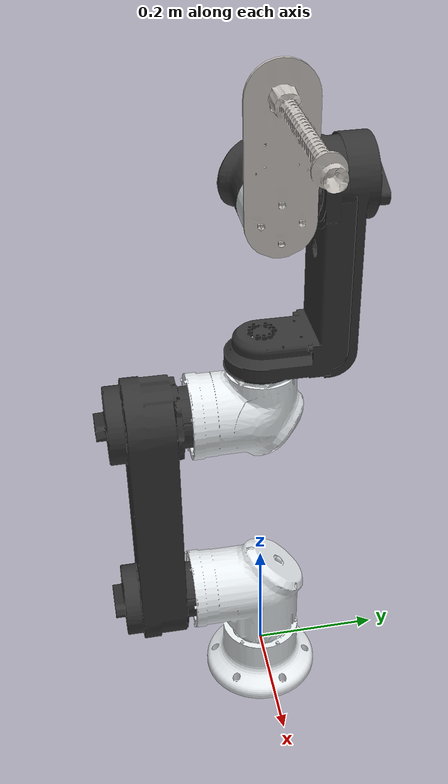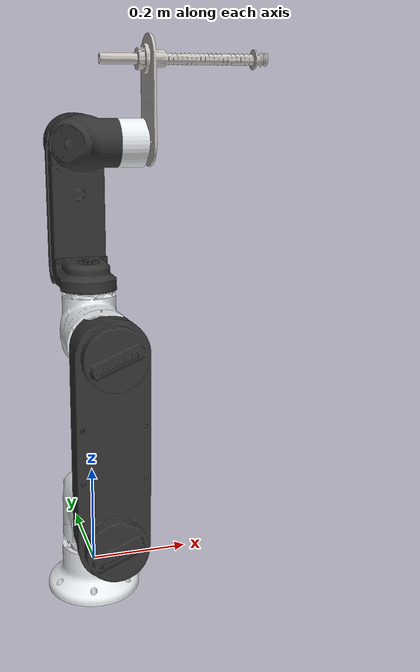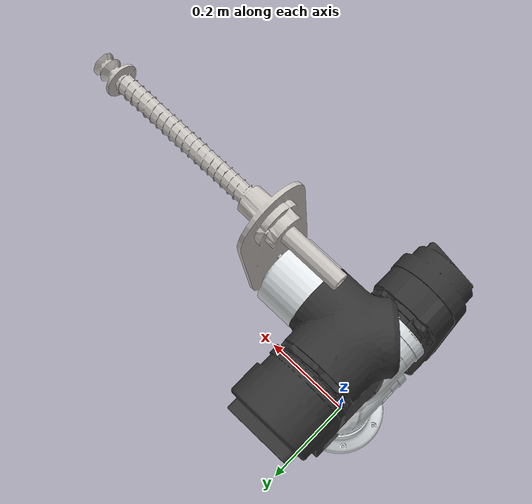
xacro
<?xml version="1.0"?>
<robot name="owl_robot" xmlns:xacro="http://wiki.ros.org/xacro">

    <xacro:include filename="$(find owl_description)/urdf/6.5/owl.xacro"/>
    <xacro:include filename="$(find owl_description)/urdf/6.5/gazebo/gazebo_6.5_control.xacro"/>

    <!-- Robotiq 2F 85 Macros-->
    <xacro:include filename="$(find owl_description)/urdf/grippers/vaccum/vaccum_gripper.xacro"/>

    <!-- OWL 6.5 Robot-->
    <xacro:owl_arm parent="world">
        <origin xyz="0.0 0.0 0.0" rpy="0 0 0" />
    </xacro:owl_arm>

    <!-- OWL 6.5 Gazebo control-->
    <xacro:gazebo_control/>

    <!-- Adding Vaccum -->
    <xacro:vaccum_gripper parent="tcp">
        <origin xyz="0.0 0.0 0.0" rpy="1.57 0 3.14" />
    </xacro:vaccum_gripper>

</robot>

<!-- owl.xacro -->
<robot name="owr_6.5" xmlns:xacro="http://ros.org/wiki/xacro">

<!-- Macro of OWL 6.5 without any end effector -->

<xacro:property name="base_mass" value="2.39" />
<xacro:property name="shoulder_mass" value="4.613" />
<xacro:property name="package_name" value="owl_description" />
 <xacro:property name="default_color" value="0.89804 0.91765 0.92941 1" />
 <xacro:property name="gray_color" value="0.2 0.2 0.2 1.0" />

 <xacro:macro name="owl_arm" params="parent *origin">

    <link name="${parent}" />
    <joint name="virtual_joint" type="fixed">
      <xacro:insert_block name="origin" />
      <parent link="${parent}" />
      <child link="base_link" />
    </joint>
    <link name="base_link">
      <inertial>
        <origin
        xyz="2.7395E-05 -0.01813 4.3722E-05"
        rpy="0 0 0" />
        <mass
        value="${base_mass}" />
        <inertia
        ixx="0.0060063"
        ixy="-2.5541E-15"
        ixz="-2.5603E-07"
        iyy="0.0095451"
        iyz="5.1619E-15"
        izz="0.006006" />
      </inertial>
      <visual>
        <origin
        xyz="0 0 0"
        rpy="0 0 0" />
        <geometry>
          <mesh
          filename="package://${package_name}/meshes/6.5/visual/owl_robot/base_link.stl" />
        </geometry>
        <material
        name="">
            <color rgba="${default_color}" />
        </material>
      </visual>
      <collision>
        <origin
        xyz="0 0 0"
        rpy="0 0 0" />
        <geometry>
          <mesh
          filename="package://${package_name}/meshes/6.5/collision/owl_robot/base_link.stl" />
        </geometry>
      </collision>
    </link>

    <link
    name="shoulder_link">
      <inertial>
        <origin
        xyz="0.00042134 0.034391 -0.10382"
        rpy="0 0 0" />
        <mass
        value="${shoulder_mass}" />
        <inertia
        ixx="0.0035279"
        ixy="-5.6452E-06"
        ixz="-9.4882E-07"
        iyy="0.0046955"
        iyz="0.00045199"
        izz="0.0048177" />
      </inertial>
      <visual>
        <origin
        xyz="0 0 0"
        rpy="0 0 0" />
        <geometry>
          <mesh
          filename="package://${package_name}/meshes/6.5/visual/owl_robot/shoulder_link.stl" />
        </geometry>
        <material
        name="">
          <color rgba="${default_color}" />
        </material>
      </visual>
      <collision>
        <origin
        xyz="0 0 0"
        rpy="0 0 0" />
        <geometry>
          <mesh
          filename="package://${package_name}/meshes/6.5/collision/owl_robot/shoulder_link.stl" />
        </geometry>
      </collision>
    </link>

    <joint
    name="BJ"
    type="revolute">
      <origin
      xyz="0 0 0"
      rpy="-3.1416 0 0" />
      <parent
      link="base_link" />
      <child
      link="shoulder_link" />
      <axis
      xyz="0 0 1" />
      <limit effort="500" velocity="50" lower="-3.14" upper="3.14"/>
    </joint>
    <link
    name="link1">
      <inertial>
        <origin
        xyz=" 0.17795 0.00011012 -0.085428"
        rpy="0 0 0" />
        <mass
        value="9.431" />
        <inertia
        ixx="0.0052455"
        ixy="1.4977E-05"
        ixz="2.6778E-05"
        iyy="0.028778"
        iyz="-3.8624E-06"
        izz="0.032177" />
      </inertial>
      <visual>
        <origin
        xyz="0 0 0"
        rpy="0 0 0" />
        <geometry>
          <mesh
          filename="package://${package_name}/meshes/6.5/visual/owl_robot/link1.stl" />
        </geometry>
        <material
        name="">
            <color rgba="${gray_color}" />
        </material>
      </visual>
      <collision>
        <origin
        xyz="0 0 0"
        rpy="0 0 0" />
        <geometry>
          <mesh
          filename="package://${package_name}/meshes/6.5/collision/owl_robot/link1.stl" />
        </geometry>
      </collision>
    </link>
    <joint
    name="SJ"
    type="revolute">
      <origin
      xyz="0.00018339 0.066603 -0.1405"
      rpy="0.58944 1.5675 -0.983" />
      <parent
      link="shoulder_link" />
      <child
      link="link1" />
      <axis
      xyz="0.0027142 -0.0011243 1" />
      <limit effort="500" velocity="50" lower="-1.6" upper="1.6"/>
    </joint>
    <link
    name="elbow_link">
      <inertial>
        <origin
        xyz="0.00023616 -0.028792 -0.029823"
        rpy="0 0 0" />
        <mass
        value="4.613" />
        <inertia
        ixx="0.0023499"
        ixy="-2.7675E-06"
        ixz="-4.1087E-07"
        iyy="0.0030181"
        iyz="-0.00026183"
        izz="0.0035661" />
      </inertial>
      <visual>
        <origin
        xyz="0 0 0"
        rpy="0 0 0" />
        <geometry>
          <mesh
          filename="package://${package_name}/meshes/6.5/visual/owl_robot/elbow_link.stl" />
        </geometry>
        <material
        name="">
          <color rgba="${default_color}" />
        </material>
      </visual>
      <collision>
        <origin
        xyz="0 0 0"
        rpy="0 0 0" />
        <geometry>
          <mesh
          filename="package://${package_name}/meshes/6.5/collision/owl_robot/elbow_link.stl" />
        </geometry>
      </collision>
    </link>
    <joint
    name="EJ"
    type="revolute">
      <origin
      xyz="0.35575 0 -0.00096557"
      rpy="3.1389 -0.0018334 -1.5781" />
      <parent
      link="link1" />
      <child
      link="elbow_link" />
      <axis
      xyz="0 0 1" />
      <limit effort="500" velocity="50" lower="-2.8" upper="3.14"/>
    </joint>
    <link
    name="link2">
      <inertial>
        <origin
        xyz="0.00015054 -0.075078 0.13834"
        rpy="0 0 0" />
        <mass
        value="2.4407" />
        <inertia
        ixx="0.009134"
        ixy="-3.9978E-06"
        ixz="-4.8015E-06"
        iyy="0.010823"
        iyz="0.00068065"
        izz="0.0041094" />
      </inertial>
      <visual>
        <origin
        xyz="0 0 0"
        rpy="0 0 0" />
        <geometry>
          <mesh
          filename="package://${package_name}/meshes/6.5/visual/owl_robot/link2.stl" />
        </geometry>
        <material
        name="">
          <color rgba="${gray_color}" />
        </material>
      </visual>
      <collision>
        <origin
        xyz="0 0 0"
        rpy="0 0 0" />
        <geometry>
          <mesh
          filename="package://${package_name}/meshes/6.5/collision/owl_robot/link2.stl" />
        </geometry>
      </collision>
    </link>
    <joint
    name="W1J"
    type="revolute">
      <origin
      xyz="0.00019567 -0.079361 -0.066603"
      rpy="1.5708 -0.0023608 0" />
      <parent
      link="elbow_link" />
      <child
      link="link2" />
      <axis
      xyz="0 0 -1" />
      <limit effort="500" velocity="50" lower="-2.84489" upper="2.84489"/>
    </joint>
    <link
    name="w2w3_link">
      <inertial>
        <origin
        xyz="0.00025923 0.029764 0.027271"
        rpy="0 0 0" />
        <mass
        value="3.118" />
        <inertia
        ixx="0.0014884"
        ixy="2.1526E-06"
        ixz="6.6731E-06"
        iyy="0.0016882"
        iyz="0.0001816"
        izz="0.0019291" />
      </inertial>
      <visual>
        <origin
        xyz="0 0 0"
        rpy="0 0 0" />
        <geometry>
          <mesh
          filename="package://${package_name}/meshes/6.5/visual/owl_robot/w2w3_link.stl" />
        </geometry>
        <material
        name="">
          <color rgba="${gray_color}" />
        </material>
      </visual>
      <collision>
        <origin
        xyz="0 0 0"
        rpy="0 0 0" />
        <geometry>
          <mesh
          filename="package://${package_name}/meshes/6.5/collision/owl_robot/w2w3_link.stl" />
        </geometry>
      </collision>
    </link>
    <joint
    name="W2J"
    type="revolute">
      <origin
      xyz="0 0 0.27639"
      rpy="2.745 -1.5667 -1.1726" />
      <parent
      link="link2" />
      <child
      link="w2w3_link" />
      <axis
      xyz="0.0037507 -0.00083382 0.99999" />
      <limit effort="500" velocity="50" lower="-1.6" upper="0.78"/>
      <safety_controller k_position="100" k_velocity="1.5" soft_lower_limit="-1.857" soft_upper_limit="0.8"/>
    </joint>
    <link
    name="end_effector_link">
      <inertial>
        <origin
        xyz="2.2451E-05 -0.00060487 0.098537"
        rpy="0 0 0" />
        <mass
        value="0.188" />
        <inertia
        ixx="0.00017935"
        ixy="-3.2299E-08"
        ixz="-2.1374E-07"
        iyy="0.00017907"
        iyz="-4.545E-07"
        izz="0.00025742" />
      </inertial>
      <visual>
        <origin
        xyz="0 0 0"
        rpy="0 0 0" />
        <geometry>
          <mesh
          filename="package://${package_name}/meshes/6.5/visual/owl_robot/end_effector_link.stl" />
        </geometry>
        <material
        name="">
          <color rgba="${default_color}" />
        </material>
      </visual>
      <collision>
        <origin
        xyz="0 0 0"
        rpy="0 0 0" />
        <geometry>
          <mesh
          filename="package://${package_name}/meshes/6.5/collision/owl_robot/end_effector_link.stl" />
        </geometry>
      </collision>
    </link>
    <joint
    name="W3J"
    type="revolute">
      <origin
      xyz="0 0 0"
      rpy="-1.2578 -1.5668 -0.31786" />
      <limit effort="500" velocity="50" lower="-3.1" upper="3.1"/>
      <parent
      link="w2w3_link" />
      <child
      link="end_effector_link" />
      <axis
      xyz="0 0 1" />
    </joint>
    <xacro:arg name="xyz" default="0 0 0" />
    <xacro:arg name="rpy" default="0 0 0" />
    <xacro:arg name="pay_load" default="1e-9" />
    <link name="tcp">
      <inertial>
        <origin rpy="$(arg rpy)" xyz="$(arg xyz)"   />
        <mass value="$(arg pay_load)" />
        <inertia ixx="0" ixy="0" ixz="0" iyy="0" iyz="0" izz="0" />
      </inertial>
    </link>
    <joint name="tcp_frame" type="fixed">
      <origin xyz="4.33681e-19 0 0.1225" rpy="5.94633e-15 -1.33504e-14 -1.5708" />
      <parent link="end_effector_link" />
      <child link="tcp" />
      <axis xyz="0 0 0"/>
    </joint>
  </xacro:macro>
</robot>

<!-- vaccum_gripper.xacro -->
<robot xmlns:xacro="http://ros.org/wiki/xacro">

<xacro:property name="package_name" value="owl_description" />

<!-- Macro of Vaccum Gripper -->

<xacro:macro name="vaccum_gripper" params="parent *origin">
  <link name="gripper_link">
    <inertial>
      <origin
        xyz="0.092094 -0.0025024 -0.013531"
        rpy="0 0 0" />
      <mass
        value="0.99242" />
      <inertia
        ixx="0.0019778"
        ixy="-9.0867E-08"
        ixz="-1.3288E-08"
        iyy="0.00448"
        iyz="-3.6223E-08"
        izz="0.003475" />
    </inertial>
    <visual>
      <origin
        xyz="0 0 0"
        rpy="0 0 0" />
      <geometry>
        <mesh
          filename="package://${package_name}/meshes/grippers/vaccum/base_link.stl" />
      </geometry>
      <material
        name="">
        <color
          rgba="0.77647 0.75686 0.73725 1" />
      </material>
    </visual>
    <collision>
      <origin
        xyz="0 0 0"
        rpy="0 0 0" />
      <geometry>
        <mesh
          filename="package://${package_name}/meshes/grippers/vaccum/base_link.stl" />
      </geometry>
    </collision>
  </link>

  <joint name="robot_ee" type="fixed">
      <xacro:insert_block name="origin" />
      <parent link="${parent}" />
      <child link="gripper_link" />

  </joint>

</xacro:macro>
</robot>
